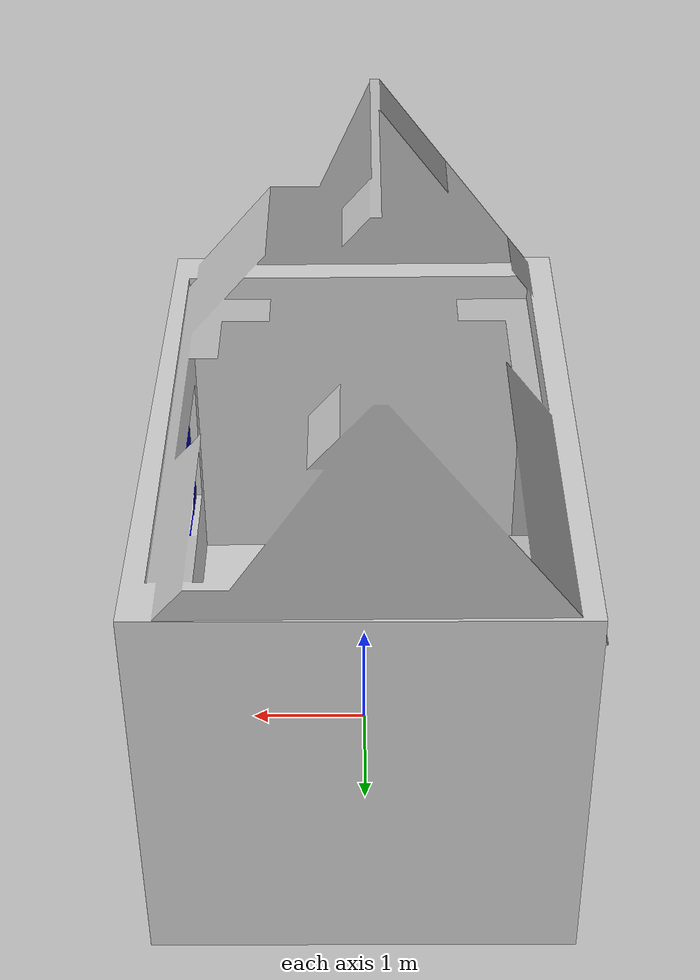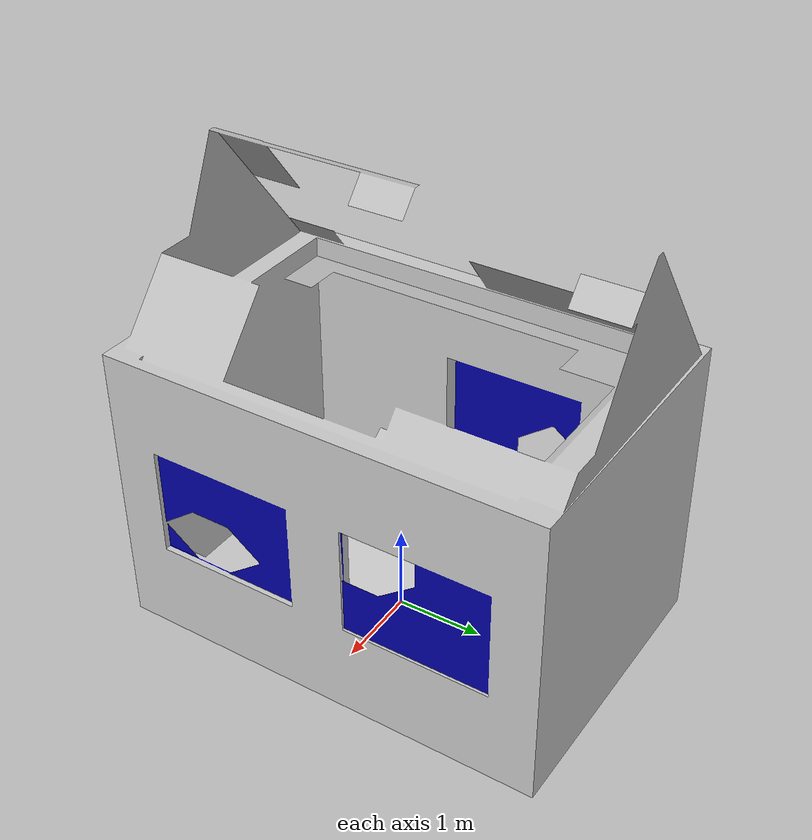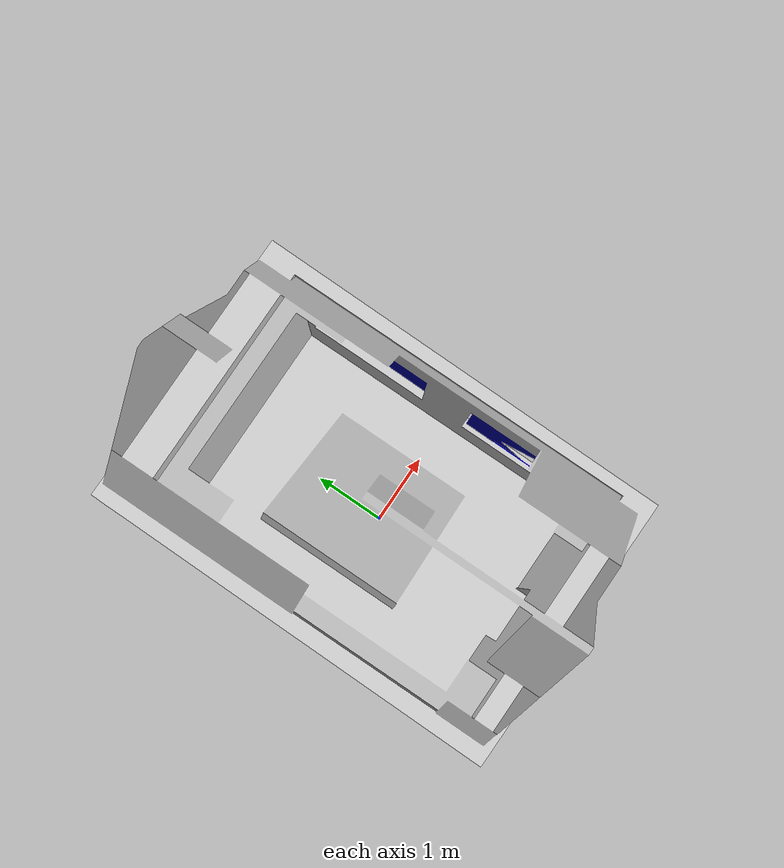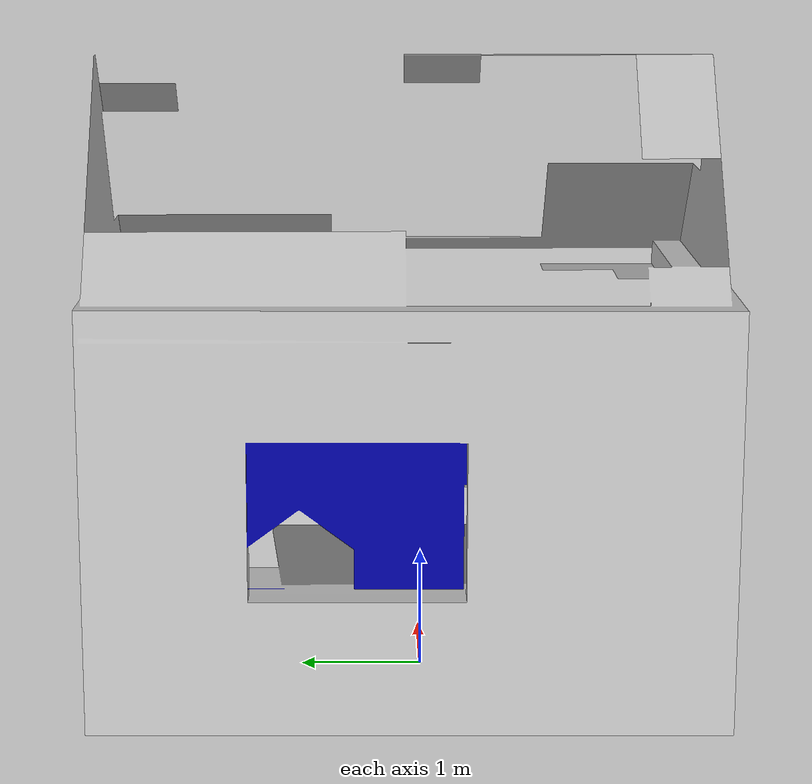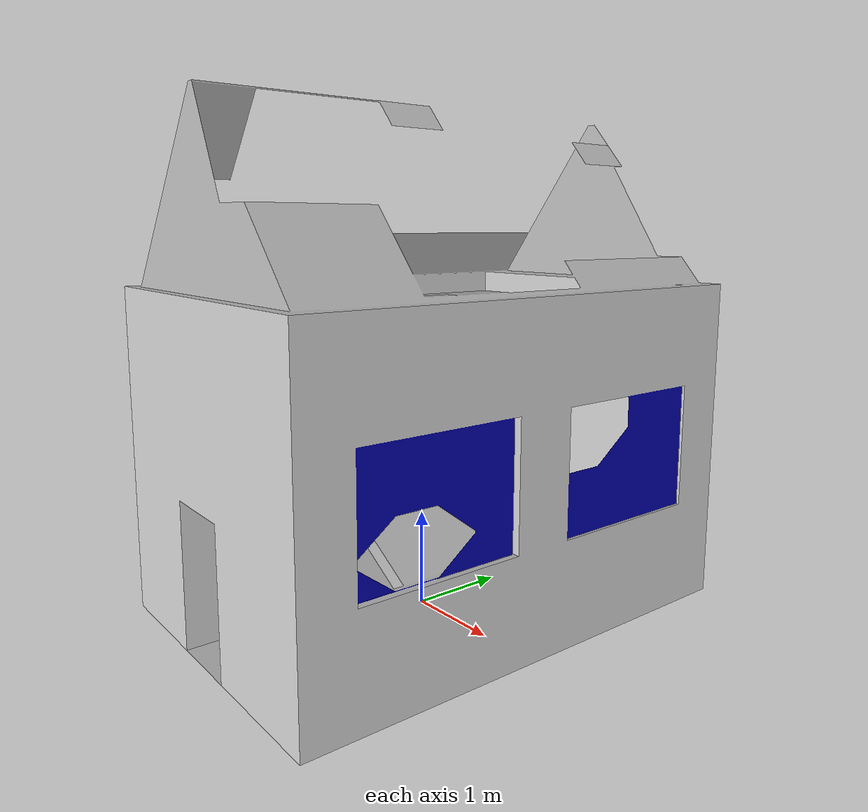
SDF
<?xml version="1.0"?>
<sdf version="1.5">
  <model name="house_broken_model">
    <static>
      true
    </static>
    <link name="house_link">
      <inertial>
        <mass>0.390</mass>
        <inertia>
          <ixx>0.00058</ixx>
          <ixy>0</ixy>
          <ixz>0</ixz>
          <iyy>0.00058</iyy>
          <iyz>0</iyz>
          <izz>0.00019</izz>
        </inertia>
      </inertial>
      <collision name="house_broken_collision">
        <geometry>
          <mesh>
            <uri>model://house_broken/meshes/house_broken.dae</uri>
          </mesh>
        </geometry>
        <surface>
          <friction>
            <ode>
              <mu>1.0</mu>
              <mu2>1.0</mu2>
            </ode>
          </friction>
          <contact>
            <ode>
              <kp>10000000.0</kp>
              <kd>1.0</kd>
              <min_depth>0.001</min_depth>
              <max_vel>0.1</max_vel>
            </ode>
          </contact>
        </surface>
      </collision>
      <visual name="house_broken_visual">
        <geometry>
          <mesh>
            <uri>model://house_broken/meshes/house_broken.dae</uri>
          </mesh>
        </geometry>
      </visual>
    </link>
  </model>
</sdf>
